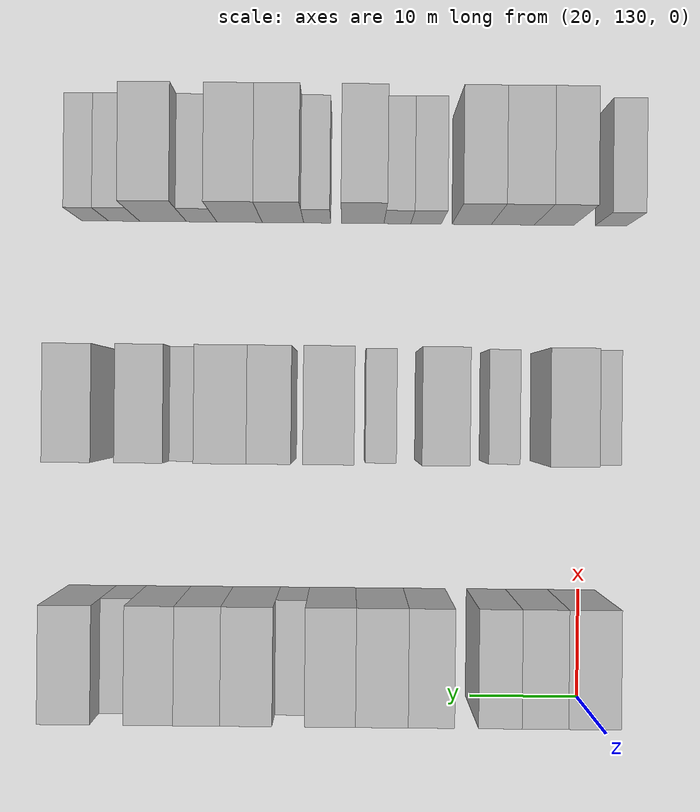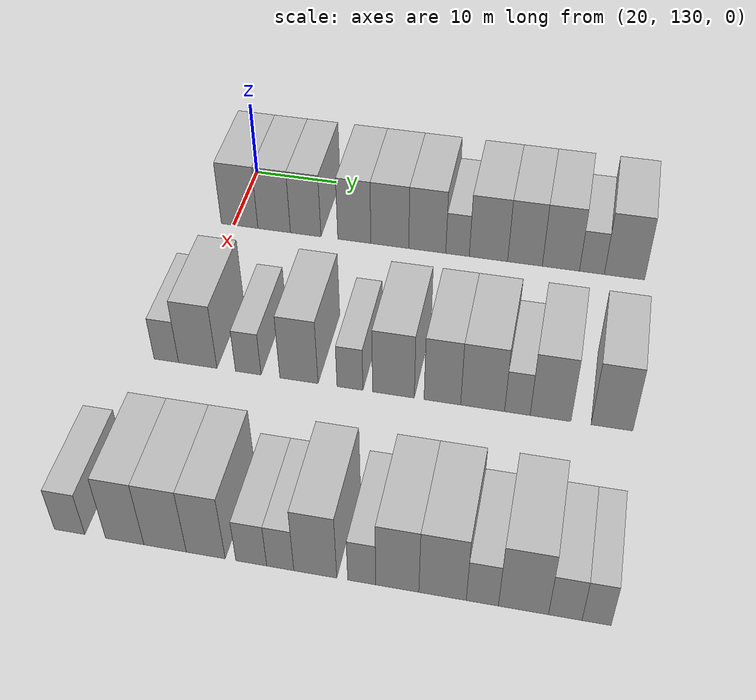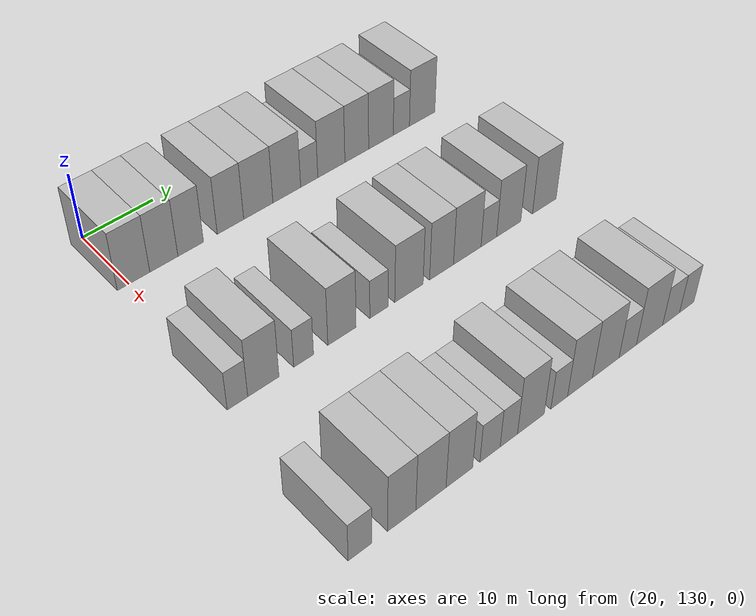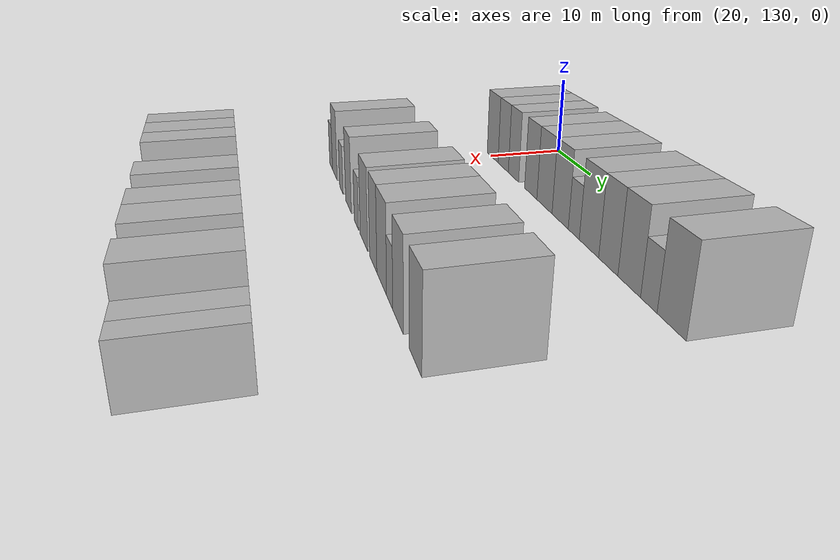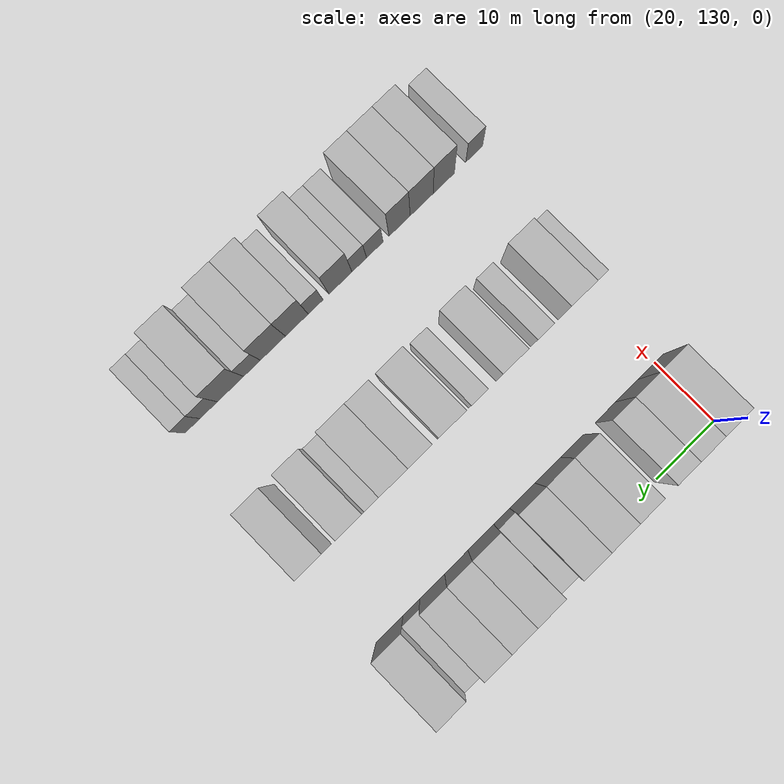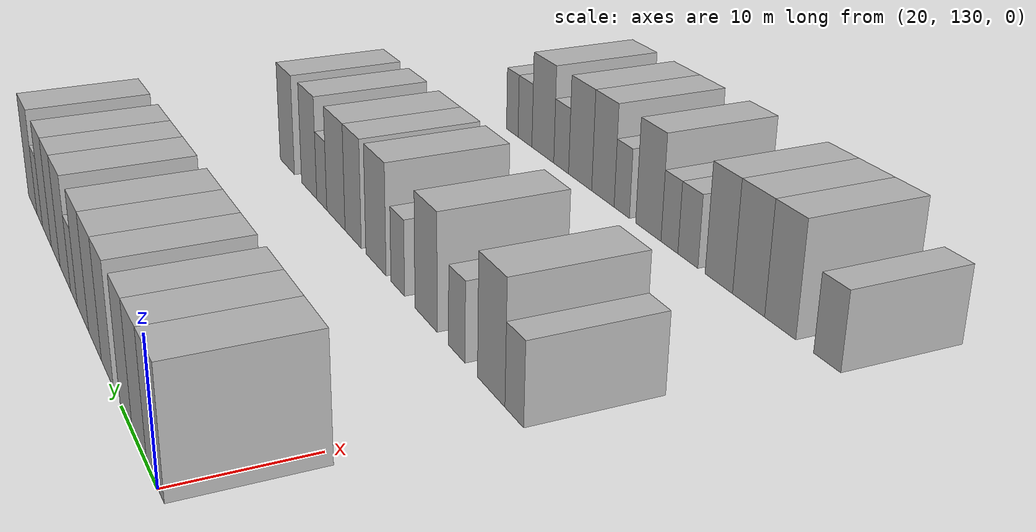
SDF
<sdf version="1.6">
 <world name="default">
  <model name="building_120">
   <static>1</static>
   <pose>25.0000 130.6593 0 0.000000 0.000000 0.000000</pose>
   <link name="link">
    <pose>0 0 4.50 0 0 0</pose>
    <collision name="collision"><geometry><box><size>10.0000 4.4227 9.0000</size></box></geometry></collision>
    <visual name="visual">
     <cast_shadows>0</cast_shadows>
     <geometry><box><size>10.0000 4.4227 9.0000</size></box></geometry>
     <material>
      <script>
       <uri>model://HANNAS_wall/materials/scripts</uri>
       <uri>model://HANNAS_wall/materials/textures</uri>
       <name>vrc/HANNAS_wall</name>
      </script>
     </material>
    </visual>
   </link>
  </model>
  <model name="building_121">
   <static>1</static>
   <pose>25.0000 134.8276 0 0.000000 0.000000 0.000000</pose>
   <link name="link">
    <pose>0 0 4.50 0 0 0</pose>
    <collision name="collision"><geometry><box><size>10.0000 3.9140 9.0000</size></box></geometry></collision>
    <visual name="visual">
     <cast_shadows>0</cast_shadows>
     <geometry><box><size>10.0000 3.9140 9.0000</size></box></geometry>
     <material>
      <script>
       <uri>model://HANNAS_wall/materials/scripts</uri>
       <uri>model://HANNAS_wall/materials/textures</uri>
       <name>vrc/HANNAS_wall</name>
      </script>
     </material>
    </visual>
   </link>
  </model>
  <model name="building_122">
   <static>1</static>
   <pose>25.0000 138.6091 0 0.000000 0.000000 0.000000</pose>
   <link name="link">
    <pose>0 0 4.50 0 0 0</pose>
    <collision name="collision"><geometry><box><size>10.0000 3.6490 9.0000</size></box></geometry></collision>
    <visual name="visual">
     <cast_shadows>0</cast_shadows>
     <geometry><box><size>10.0000 3.6490 9.0000</size></box></geometry>
     <material>
      <script>
       <uri>model://HANNAS_wall/materials/scripts</uri>
       <uri>model://HANNAS_wall/materials/textures</uri>
       <name>vrc/HANNAS_wall</name>
      </script>
     </material>
    </visual>
   </link>
  </model>
  <model name="building_123">
   <static>1</static>
   <pose>25.0000 144.3823 0 0.000000 0.000000 0.000000</pose>
   <link name="link">
    <pose>0 0 4.50 0 0 0</pose>
    <collision name="collision"><geometry><box><size>10.0000 3.8973 9.0000</size></box></geometry></collision>
    <visual name="visual">
     <cast_shadows>0</cast_shadows>
     <geometry><box><size>10.0000 3.8973 9.0000</size></box></geometry>
     <material>
      <script>
       <uri>model://HANNAS_wall/materials/scripts</uri>
       <uri>model://HANNAS_wall/materials/textures</uri>
       <name>vrc/HANNAS_wall</name>
      </script>
     </material>
    </visual>
   </link>
  </model>
  <model name="building_124">
   <static>1</static>
   <pose>25.0000 148.5452 0 0.000000 0.000000 0.000000</pose>
   <link name="link">
    <pose>0 0 4.50 0 0 0</pose>
    <collision name="collision"><geometry><box><size>10.0000 4.4286 9.0000</size></box></geometry></collision>
    <visual name="visual">
     <cast_shadows>0</cast_shadows>
     <geometry><box><size>10.0000 4.4286 9.0000</size></box></geometry>
     <material>
      <script>
       <uri>model://HANNAS_wall/materials/scripts</uri>
       <uri>model://HANNAS_wall/materials/textures</uri>
       <name>vrc/HANNAS_wall</name>
      </script>
     </material>
    </visual>
   </link>
  </model>
  <model name="building_125">
   <static>1</static>
   <pose>25.0000 152.9119 0 0.000000 0.000000 0.000000</pose>
   <link name="link">
    <pose>0 0 4.50 0 0 0</pose>
    <collision name="collision"><geometry><box><size>10.0000 4.3048 9.0000</size></box></geometry></collision>
    <visual name="visual">
     <cast_shadows>0</cast_shadows>
     <geometry><box><size>10.0000 4.3048 9.0000</size></box></geometry>
     <material>
      <script>
       <uri>model://HANNAS_wall/materials/scripts</uri>
       <uri>model://HANNAS_wall/materials/textures</uri>
       <name>vrc/HANNAS_wall</name>
      </script>
     </material>
    </visual>
   </link>
  </model>
  <model name="building_126">
   <static>1</static>
   <pose>25.0000 156.4189 0 0.000000 0.000000 0.000000</pose>
   <link name="link">
    <pose>0 0 3.00 0 0 0</pose>
    <collision name="collision"><geometry><box><size>10.0000 2.7092 6.0000</size></box></geometry></collision>
    <visual name="visual">
     <cast_shadows>0</cast_shadows>
     <geometry><box><size>10.0000 2.7092 6.0000</size></box></geometry>
     <material>
      <script>
       <uri>model://HANNAS_wall/materials/scripts</uri>
       <uri>model://HANNAS_wall/materials/textures</uri>
       <name>vrc/HANNAS_wall</name>
      </script>
     </material>
    </visual>
   </link>
  </model>
  <model name="building_127">
   <static>1</static>
   <pose>25.0000 159.9689 0 0.000000 0.000000 0.000000</pose>
   <link name="link">
    <pose>0 0 4.50 0 0 0</pose>
    <collision name="collision"><geometry><box><size>10.0000 4.3909 9.0000</size></box></geometry></collision>
    <visual name="visual">
     <cast_shadows>0</cast_shadows>
     <geometry><box><size>10.0000 4.3909 9.0000</size></box></geometry>
     <material>
      <script>
       <uri>model://HANNAS_wall/materials/scripts</uri>
       <uri>model://HANNAS_wall/materials/textures</uri>
       <name>vrc/HANNAS_wall</name>
      </script>
     </material>
    </visual>
   </link>
  </model>
  <model name="building_128">
   <static>1</static>
   <pose>25.0000 164.1301 0 0.000000 0.000000 0.000000</pose>
   <link name="link">
    <pose>0 0 4.50 0 0 0</pose>
    <collision name="collision"><geometry><box><size>10.0000 3.9314 9.0000</size></box></geometry></collision>
    <visual name="visual">
     <cast_shadows>0</cast_shadows>
     <geometry><box><size>10.0000 3.9314 9.0000</size></box></geometry>
     <material>
      <script>
       <uri>model://HANNAS_wall/materials/scripts</uri>
       <uri>model://HANNAS_wall/materials/textures</uri>
       <name>vrc/HANNAS_wall</name>
      </script>
     </material>
    </visual>
   </link>
  </model>
  <model name="building_129">
   <static>1</static>
   <pose>25.0000 168.1884 0 0.000000 0.000000 0.000000</pose>
   <link name="link">
    <pose>0 0 4.50 0 0 0</pose>
    <collision name="collision"><geometry><box><size>10.0000 4.1851 9.0000</size></box></geometry></collision>
    <visual name="visual">
     <cast_shadows>0</cast_shadows>
     <geometry><box><size>10.0000 4.1851 9.0000</size></box></geometry>
     <material>
      <script>
       <uri>model://HANNAS_wall/materials/scripts</uri>
       <uri>model://HANNAS_wall/materials/textures</uri>
       <name>vrc/HANNAS_wall</name>
      </script>
     </material>
    </visual>
   </link>
  </model>
  <model name="building_130">
   <static>1</static>
   <pose>25.0000 171.6714 0 0.000000 0.000000 0.000000</pose>
   <link name="link">
    <pose>0 0 3.00 0 0 0</pose>
    <collision name="collision"><geometry><box><size>10.0000 2.7810 6.0000</size></box></geometry></collision>
    <visual name="visual">
     <cast_shadows>0</cast_shadows>
     <geometry><box><size>10.0000 2.7810 6.0000</size></box></geometry>
     <material>
      <script>
       <uri>model://HANNAS_wall/materials/scripts</uri>
       <uri>model://HANNAS_wall/materials/textures</uri>
       <name>vrc/HANNAS_wall</name>
      </script>
     </material>
    </visual>
   </link>
  </model>
  <model name="building_131">
   <static>1</static>
   <pose>25.0000 175.2971 0 0.000000 0.000000 0.000000</pose>
   <link name="link">
    <pose>0 0 4.50 0 0 0</pose>
    <collision name="collision"><geometry><box><size>10.0000 4.4704 9.0000</size></box></geometry></collision>
    <visual name="visual">
     <cast_shadows>0</cast_shadows>
     <geometry><box><size>10.0000 4.4704 9.0000</size></box></geometry>
     <material>
      <script>
       <uri>model://HANNAS_wall/materials/scripts</uri>
       <uri>model://HANNAS_wall/materials/textures</uri>
       <name>vrc/HANNAS_wall</name>
      </script>
     </material>
    </visual>
   </link>
  </model>
  <model name="building_313">
   <static>1</static>
   <pose>47.0000 129.1164 0 0.000000 0.000000 0.000000</pose>
   <link name="link">
    <pose>0 0 3.00 0 0 0</pose>
    <collision name="collision"><geometry><box><size>10.0000 2.6721 6.0000</size></box></geometry></collision>
    <visual name="visual">
     <cast_shadows>0</cast_shadows>
     <geometry><box><size>10.0000 2.6721 6.0000</size></box></geometry>
     <material>
      <script>
       <uri>model://HANNAS_wall/materials/scripts</uri>
       <uri>model://HANNAS_wall/materials/textures</uri>
       <name>vrc/HANNAS_wall</name>
      </script>
     </material>
    </visual>
   </link>
  </model>
  <model name="building_314">
   <static>1</static>
   <pose>47.0000 132.5301 0 0.000000 0.000000 0.000000</pose>
   <link name="link">
    <pose>0 0 4.50 0 0 0</pose>
    <collision name="collision"><geometry><box><size>10.0000 4.1552 9.0000</size></box></geometry></collision>
    <visual name="visual">
     <cast_shadows>0</cast_shadows>
     <geometry><box><size>10.0000 4.1552 9.0000</size></box></geometry>
     <material>
      <script>
       <uri>model://HANNAS_wall/materials/scripts</uri>
       <uri>model://HANNAS_wall/materials/textures</uri>
       <name>vrc/HANNAS_wall</name>
      </script>
     </material>
    </visual>
   </link>
  </model>
  <model name="building_315">
   <static>1</static>
   <pose>47.0000 137.9764 0 0.000000 0.000000 0.000000</pose>
   <link name="link">
    <pose>0 0 3.00 0 0 0</pose>
    <collision name="collision"><geometry><box><size>10.0000 2.7374 6.0000</size></box></geometry></collision>
    <visual name="visual">
     <cast_shadows>0</cast_shadows>
     <geometry><box><size>10.0000 2.7374 6.0000</size></box></geometry>
     <material>
      <script>
       <uri>model://HANNAS_wall/materials/scripts</uri>
       <uri>model://HANNAS_wall/materials/textures</uri>
       <name>vrc/HANNAS_wall</name>
      </script>
     </material>
    </visual>
   </link>
  </model>
  <model name="building_316">
   <static>1</static>
   <pose>47.0000 143.3645 0 0.000000 0.000000 0.000000</pose>
   <link name="link">
    <pose>0 0 4.50 0 0 0</pose>
    <collision name="collision"><geometry><box><size>10.0000 4.0388 9.0000</size></box></geometry></collision>
    <visual name="visual">
     <cast_shadows>0</cast_shadows>
     <geometry><box><size>10.0000 4.0388 9.0000</size></box></geometry>
     <material>
      <script>
       <uri>model://HANNAS_wall/materials/scripts</uri>
       <uri>model://HANNAS_wall/materials/textures</uri>
       <name>vrc/HANNAS_wall</name>
      </script>
     </material>
    </visual>
   </link>
  </model>
  <model name="building_317">
   <static>1</static>
   <pose>47.0000 148.7353 0 0.000000 0.000000 0.000000</pose>
   <link name="link">
    <pose>0 0 3.00 0 0 0</pose>
    <collision name="collision"><geometry><box><size>10.0000 2.7028 6.0000</size></box></geometry></collision>
    <visual name="visual">
     <cast_shadows>0</cast_shadows>
     <geometry><box><size>10.0000 2.7028 6.0000</size></box></geometry>
     <material>
      <script>
       <uri>model://HANNAS_wall/materials/scripts</uri>
       <uri>model://HANNAS_wall/materials/textures</uri>
       <name>vrc/HANNAS_wall</name>
      </script>
     </material>
    </visual>
   </link>
  </model>
  <model name="building_318">
   <static>1</static>
   <pose>47.0000 153.2479 0 0.000000 0.000000 0.000000</pose>
   <link name="link">
    <pose>0 0 4.50 0 0 0</pose>
    <collision name="collision"><geometry><box><size>10.0000 4.3224 9.0000</size></box></geometry></collision>
    <visual name="visual">
     <cast_shadows>0</cast_shadows>
     <geometry><box><size>10.0000 4.3224 9.0000</size></box></geometry>
     <material>
      <script>
       <uri>model://HANNAS_wall/materials/scripts</uri>
       <uri>model://HANNAS_wall/materials/textures</uri>
       <name>vrc/HANNAS_wall</name>
      </script>
     </material>
    </visual>
   </link>
  </model>
  <model name="building_319">
   <static>1</static>
   <pose>47.0000 158.2819 0 0.000000 0.000000 0.000000</pose>
   <link name="link">
    <pose>0 0 4.50 0 0 0</pose>
    <collision name="collision"><geometry><box><size>10.0000 3.7458 9.0000</size></box></geometry></collision>
    <visual name="visual">
     <cast_shadows>0</cast_shadows>
     <geometry><box><size>10.0000 3.7458 9.0000</size></box></geometry>
     <material>
      <script>
       <uri>model://HANNAS_wall/materials/scripts</uri>
       <uri>model://HANNAS_wall/materials/textures</uri>
       <name>vrc/HANNAS_wall</name>
      </script>
     </material>
    </visual>
   </link>
  </model>
  <model name="building_320">
   <static>1</static>
   <pose>47.0000 162.3800 0 0.000000 0.000000 0.000000</pose>
   <link name="link">
    <pose>0 0 4.50 0 0 0</pose>
    <collision name="collision"><geometry><box><size>10.0000 4.4503 9.0000</size></box></geometry></collision>
    <visual name="visual">
     <cast_shadows>0</cast_shadows>
     <geometry><box><size>10.0000 4.4503 9.0000</size></box></geometry>
     <material>
      <script>
       <uri>model://HANNAS_wall/materials/scripts</uri>
       <uri>model://HANNAS_wall/materials/textures</uri>
       <name>vrc/HANNAS_wall</name>
      </script>
     </material>
    </visual>
   </link>
  </model>
  <model name="building_321">
   <static>1</static>
   <pose>47.0000 165.8920 0 0.000000 0.000000 0.000000</pose>
   <link name="link">
    <pose>0 0 3.00 0 0 0</pose>
    <collision name="collision"><geometry><box><size>10.0000 2.5737 6.0000</size></box></geometry></collision>
    <visual name="visual">
     <cast_shadows>0</cast_shadows>
     <geometry><box><size>10.0000 2.5737 6.0000</size></box></geometry>
     <material>
      <script>
       <uri>model://HANNAS_wall/materials/scripts</uri>
       <uri>model://HANNAS_wall/materials/textures</uri>
       <name>vrc/HANNAS_wall</name>
      </script>
     </material>
    </visual>
   </link>
  </model>
  <model name="building_322">
   <static>1</static>
   <pose>47.0000 169.2128 0 0.000000 0.000000 0.000000</pose>
   <link name="link">
    <pose>0 0 4.50 0 0 0</pose>
    <collision name="collision"><geometry><box><size>10.0000 4.0679 9.0000</size></box></geometry></collision>
    <visual name="visual">
     <cast_shadows>0</cast_shadows>
     <geometry><box><size>10.0000 4.0679 9.0000</size></box></geometry>
     <material>
      <script>
       <uri>model://HANNAS_wall/materials/scripts</uri>
       <uri>model://HANNAS_wall/materials/textures</uri>
       <name>vrc/HANNAS_wall</name>
      </script>
     </material>
    </visual>
   </link>
  </model>
  <model name="building_323">
   <static>1</static>
   <pose>47.0000 175.3021 0 0.000000 0.000000 0.000000</pose>
   <link name="link">
    <pose>0 0 4.50 0 0 0</pose>
    <collision name="collision"><geometry><box><size>10.0000 4.1107 9.0000</size></box></geometry></collision>
    <visual name="visual">
     <cast_shadows>0</cast_shadows>
     <geometry><box><size>10.0000 4.1107 9.0000</size></box></geometry>
     <material>
      <script>
       <uri>model://HANNAS_wall/materials/scripts</uri>
       <uri>model://HANNAS_wall/materials/textures</uri>
       <name>vrc/HANNAS_wall</name>
      </script>
     </material>
    </visual>
   </link>
  </model>
  <model name="building_501">
   <static>1</static>
   <pose>69.0000 127.2486 0 0.000000 0.000000 0.000000</pose>
   <link name="link">
    <pose>0 0 3.00 0 0 0</pose>
    <collision name="collision"><geometry><box><size>10.0000 2.9410 6.0000</size></box></geometry></collision>
    <visual name="visual">
     <cast_shadows>0</cast_shadows>
     <geometry><box><size>10.0000 2.9410 6.0000</size></box></geometry>
     <material>
      <script>
       <uri>model://HANNAS_wall/materials/scripts</uri>
       <uri>model://HANNAS_wall/materials/textures</uri>
       <name>vrc/HANNAS_wall</name>
      </script>
     </material>
    </visual>
   </link>
  </model>
  <model name="building_502">
   <static>1</static>
   <pose>69.0000 132.5593 0 0.000000 0.000000 0.000000</pose>
   <link name="link">
    <pose>0 0 4.50 0 0 0</pose>
    <collision name="collision"><geometry><box><size>10.0000 3.6803 9.0000</size></box></geometry></collision>
    <visual name="visual">
     <cast_shadows>0</cast_shadows>
     <geometry><box><size>10.0000 3.6803 9.0000</size></box></geometry>
     <material>
      <script>
       <uri>model://HANNAS_wall/materials/scripts</uri>
       <uri>model://HANNAS_wall/materials/textures</uri>
       <name>vrc/HANNAS_wall</name>
      </script>
     </material>
    </visual>
   </link>
  </model>
  <model name="building_503">
   <static>1</static>
   <pose>69.0000 136.4129 0 0.000000 0.000000 0.000000</pose>
   <link name="link">
    <pose>0 0 4.50 0 0 0</pose>
    <collision name="collision"><geometry><box><size>10.0000 4.0271 9.0000</size></box></geometry></collision>
    <visual name="visual">
     <cast_shadows>0</cast_shadows>
     <geometry><box><size>10.0000 4.0271 9.0000</size></box></geometry>
     <material>
      <script>
       <uri>model://HANNAS_wall/materials/scripts</uri>
       <uri>model://HANNAS_wall/materials/textures</uri>
       <name>vrc/HANNAS_wall</name>
      </script>
     </material>
    </visual>
   </link>
  </model>
  <model name="building_504">
   <static>1</static>
   <pose>69.0000 140.2579 0 0.000000 0.000000 0.000000</pose>
   <link name="link">
    <pose>0 0 4.50 0 0 0</pose>
    <collision name="collision"><geometry><box><size>10.0000 3.6628 9.0000</size></box></geometry></collision>
    <visual name="visual">
     <cast_shadows>0</cast_shadows>
     <geometry><box><size>10.0000 3.6628 9.0000</size></box></geometry>
     <material>
      <script>
       <uri>model://HANNAS_wall/materials/scripts</uri>
       <uri>model://HANNAS_wall/materials/textures</uri>
       <name>vrc/HANNAS_wall</name>
      </script>
     </material>
    </visual>
   </link>
  </model>
  <model name="building_505">
   <static>1</static>
   <pose>69.0000 144.5201 0 0.000000 0.000000 0.000000</pose>
   <link name="link">
    <pose>0 0 3.00 0 0 0</pose>
    <collision name="collision"><geometry><box><size>10.0000 2.8616 6.0000</size></box></geometry></collision>
    <visual name="visual">
     <cast_shadows>0</cast_shadows>
     <geometry><box><size>10.0000 2.8616 6.0000</size></box></geometry>
     <material>
      <script>
       <uri>model://HANNAS_wall/materials/scripts</uri>
       <uri>model://HANNAS_wall/materials/textures</uri>
       <name>vrc/HANNAS_wall</name>
      </script>
     </material>
    </visual>
   </link>
  </model>
  <model name="building_506">
   <static>1</static>
   <pose>69.0000 147.2041 0 0.000000 0.000000 0.000000</pose>
   <link name="link">
    <pose>0 0 3.00 0 0 0</pose>
    <collision name="collision"><geometry><box><size>10.0000 2.5065 6.0000</size></box></geometry></collision>
    <visual name="visual">
     <cast_shadows>0</cast_shadows>
     <geometry><box><size>10.0000 2.5065 6.0000</size></box></geometry>
     <material>
      <script>
       <uri>model://HANNAS_wall/materials/scripts</uri>
       <uri>model://HANNAS_wall/materials/textures</uri>
       <name>vrc/HANNAS_wall</name>
      </script>
     </material>
    </visual>
   </link>
  </model>
  <model name="building_507">
   <static>1</static>
   <pose>69.0000 150.4260 0 0.000000 0.000000 0.000000</pose>
   <link name="link">
    <pose>0 0 4.50 0 0 0</pose>
    <collision name="collision"><geometry><box><size>10.0000 3.9372 9.0000</size></box></geometry></collision>
    <visual name="visual">
     <cast_shadows>0</cast_shadows>
     <geometry><box><size>10.0000 3.9372 9.0000</size></box></geometry>
     <material>
      <script>
       <uri>model://HANNAS_wall/materials/scripts</uri>
       <uri>model://HANNAS_wall/materials/textures</uri>
       <name>vrc/HANNAS_wall</name>
      </script>
     </material>
    </visual>
   </link>
  </model>
  <model name="building_508">
   <static>1</static>
   <pose>69.0000 154.6609 0 0.000000 0.000000 0.000000</pose>
   <link name="link">
    <pose>0 0 3.00 0 0 0</pose>
    <collision name="collision"><geometry><box><size>10.0000 2.5327 6.0000</size></box></geometry></collision>
    <visual name="visual">
     <cast_shadows>0</cast_shadows>
     <geometry><box><size>10.0000 2.5327 6.0000</size></box></geometry>
     <material>
      <script>
       <uri>model://HANNAS_wall/materials/scripts</uri>
       <uri>model://HANNAS_wall/materials/textures</uri>
       <name>vrc/HANNAS_wall</name>
      </script>
     </material>
    </visual>
   </link>
  </model>
  <model name="building_509">
   <static>1</static>
   <pose>69.0000 157.8646 0 0.000000 0.000000 0.000000</pose>
   <link name="link">
    <pose>0 0 4.50 0 0 0</pose>
    <collision name="collision"><geometry><box><size>10.0000 3.8746 9.0000</size></box></geometry></collision>
    <visual name="visual">
     <cast_shadows>0</cast_shadows>
     <geometry><box><size>10.0000 3.8746 9.0000</size></box></geometry>
     <material>
      <script>
       <uri>model://HANNAS_wall/materials/scripts</uri>
       <uri>model://HANNAS_wall/materials/textures</uri>
       <name>vrc/HANNAS_wall</name>
      </script>
     </material>
    </visual>
   </link>
  </model>
  <model name="building_510">
   <static>1</static>
   <pose>69.0000 161.9120 0 0.000000 0.000000 0.000000</pose>
   <link name="link">
    <pose>0 0 4.50 0 0 0</pose>
    <collision name="collision"><geometry><box><size>10.0000 4.2203 9.0000</size></box></geometry></collision>
    <visual name="visual">
     <cast_shadows>0</cast_shadows>
     <geometry><box><size>10.0000 4.2203 9.0000</size></box></geometry>
     <material>
      <script>
       <uri>model://HANNAS_wall/materials/scripts</uri>
       <uri>model://HANNAS_wall/materials/textures</uri>
       <name>vrc/HANNAS_wall</name>
      </script>
     </material>
    </visual>
   </link>
  </model>
  <model name="building_511">
   <static>1</static>
   <pose>69.0000 165.4376 0 0.000000 0.000000 0.000000</pose>
   <link name="link">
    <pose>0 0 3.00 0 0 0</pose>
    <collision name="collision"><geometry><box><size>10.0000 2.8308 6.0000</size></box></geometry></collision>
    <visual name="visual">
     <cast_shadows>0</cast_shadows>
     <geometry><box><size>10.0000 2.8308 6.0000</size></box></geometry>
     <material>
      <script>
       <uri>model://HANNAS_wall/materials/scripts</uri>
       <uri>model://HANNAS_wall/materials/textures</uri>
       <name>vrc/HANNAS_wall</name>
      </script>
     </material>
    </visual>
   </link>
  </model>
  <model name="building_512">
   <static>1</static>
   <pose>69.0000 169.0431 0 0.000000 0.000000 0.000000</pose>
   <link name="link">
    <pose>0 0 4.50 0 0 0</pose>
    <collision name="collision"><geometry><box><size>10.0000 4.3802 9.0000</size></box></geometry></collision>
    <visual name="visual">
     <cast_shadows>0</cast_shadows>
     <geometry><box><size>10.0000 4.3802 9.0000</size></box></geometry>
     <material>
      <script>
       <uri>model://HANNAS_wall/materials/scripts</uri>
       <uri>model://HANNAS_wall/materials/textures</uri>
       <name>vrc/HANNAS_wall</name>
      </script>
     </material>
    </visual>
   </link>
  </model>
  <model name="building_513">
   <static>1</static>
   <pose>69.0000 172.6836 0 0.000000 0.000000 0.000000</pose>
   <link name="link">
    <pose>0 0 3.00 0 0 0</pose>
    <collision name="collision"><geometry><box><size>10.0000 2.9006 6.0000</size></box></geometry></collision>
    <visual name="visual">
     <cast_shadows>0</cast_shadows>
     <geometry><box><size>10.0000 2.9006 6.0000</size></box></geometry>
     <material>
      <script>
       <uri>model://HANNAS_wall/materials/scripts</uri>
       <uri>model://HANNAS_wall/materials/textures</uri>
       <name>vrc/HANNAS_wall</name>
      </script>
     </material>
    </visual>
   </link>
  </model>
  <model name="building_514">
   <static>1</static>
   <pose>69.0000 175.3818 0 0.000000 0.000000 0.000000</pose>
   <link name="link">
    <pose>0 0 3.00 0 0 0</pose>
    <collision name="collision"><geometry><box><size>10.0000 2.4959 6.0000</size></box></geometry></collision>
    <visual name="visual">
     <cast_shadows>0</cast_shadows>
     <geometry><box><size>10.0000 2.4959 6.0000</size></box></geometry>
     <material>
      <script>
       <uri>model://HANNAS_wall/materials/scripts</uri>
       <uri>model://HANNAS_wall/materials/textures</uri>
       <name>vrc/HANNAS_wall</name>
      </script>
     </material>
    </visual>
   </link>
  </model>
 </world>
</sdf>
